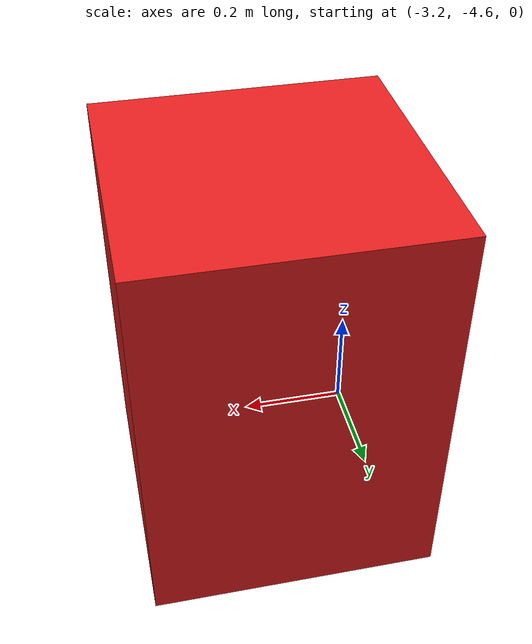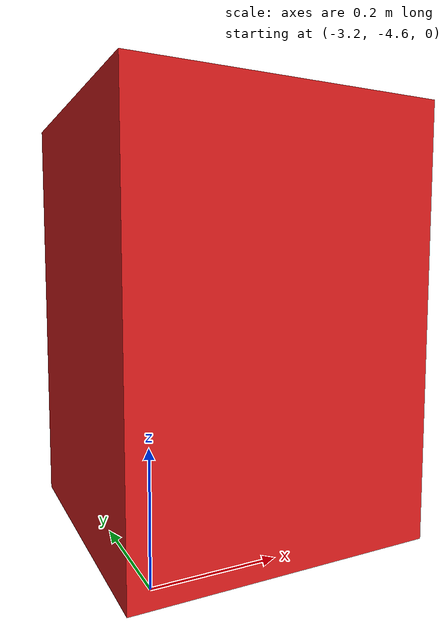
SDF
<?xml version="1.0" ?>
<!--
  moving_obstacle.sdf —— 动态移动障碍物（演示 Nav2 动态避障/局部重规划）

  由 moving_obstacle.py 在导航阶段 spawn 到仿真世界，并在走廊里来回巡逻。
  只在导航演示时出现，不参与建图，保证 SLAM 地图干净。
-->
<sdf version="1.6">
  <model name="moving_obstacle">
    <pose>-3.0 -4.4 0.35 0 0 0</pose>
    <link name="link">
      <collision name="collision">
        <geometry><box><size>0.5 0.5 0.7</size></box></geometry>
      </collision>
      <visual name="visual">
        <geometry><box><size>0.5 0.5 0.7</size></box></geometry>
        <material>
          <ambient>0.85 0.10 0.10 1</ambient>
          <diffuse>0.90 0.12 0.12 1</diffuse>
          <specular>0.5 0.4 0.4 1</specular>
          <emissive>0.15 0.0 0.0 1</emissive>
        </material>
      </visual>
      <inertial>
        <mass>8.0</mass>
        <inertia><ixx>0.4</ixx><iyy>0.4</iyy><izz>0.4</izz></inertia>
      </inertial>
    </link>
  </model>
</sdf>
